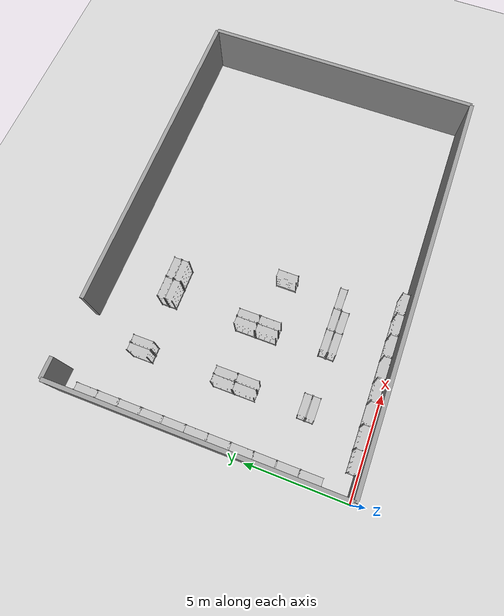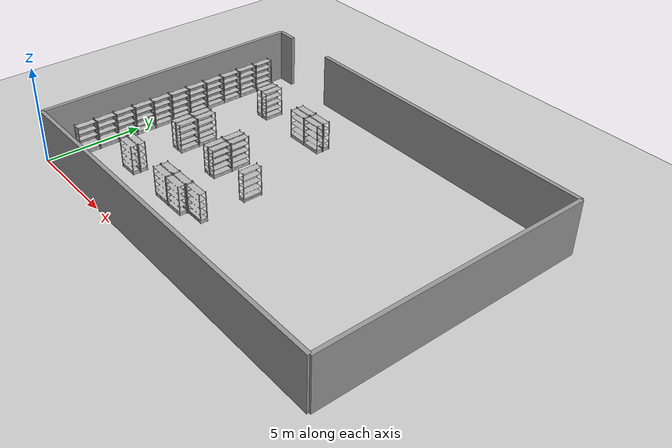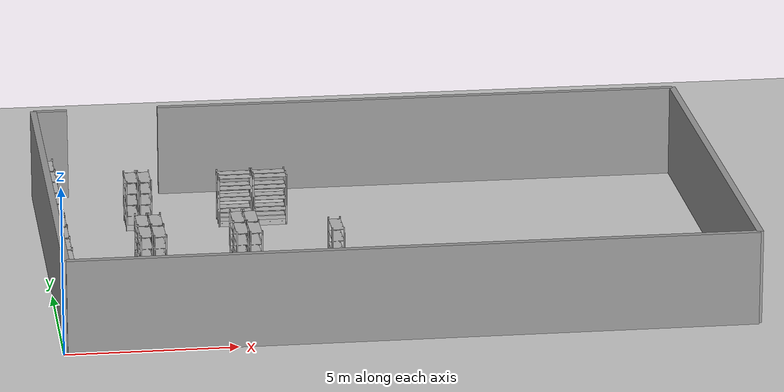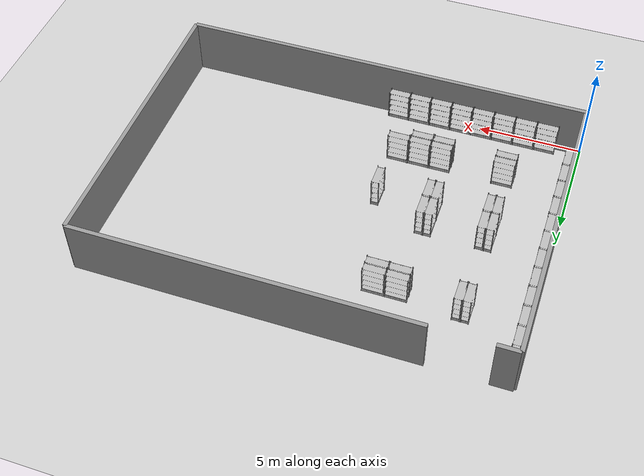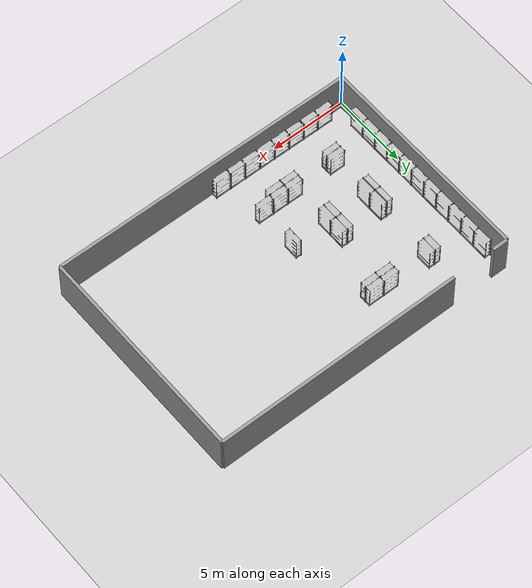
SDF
<sdf version="1.6">
 <world name="default">
  <model name="ground_plane">
   <static>1</static>
   <link name="link">
    <collision name="collision">
     <geometry><plane><normal>0 0 1</normal><size>100 100</size></plane></geometry>
     <surface>
      <contact><collide_bitmask>65535</collide_bitmask></contact>
      <friction><ode><mu>1000</mu><mu2>1000</mu2></ode></friction>
     </surface>
    </collision>
    <visual name="visual">
     <cast_shadows>0</cast_shadows>
     <geometry><plane><normal>0 0 1</normal><size>100 100</size></plane></geometry>
     <material>
      <script><uri>file://media/materials/scripts/gazebo.material</uri><name>Gazebo/Grey</name></script>
     </material>
    </visual>
   </link>
  </model>
  <model name="store_shelf_moduled_0">
   <link name="link">
    <collision name="collision">
     <geometry><mesh><uri>model://store_shelf_moduled/meshes/store_shelf_moduled.dae</uri></mesh></geometry>
    </collision>
    <visual name="visual">
     <geometry><mesh><uri>model://store_shelf_moduled/meshes/store_shelf_moduled.dae</uri></mesh></geometry>
    </visual>
    <inertial>
     <mass>1000</mass>
     <inertia>
      <ixx>840083</ixx>
      <ixy>0</ixy>
      <ixz>0</ixz>
      <iyy>475500</iyy>
      <iyz>0</iyz>
      <izz>1.30208e+06</izz>
     </inertia>
    </inertial>
   </link>
   <static>1</static>
   <pose>1.16 0.2 0 0 0 0</pose>
  </model>
  <model name="store_shelf_moduled_1">
   <link name="link">
    <collision name="collision">
     <geometry><mesh><uri>model://store_shelf_moduled/meshes/store_shelf_moduled.dae</uri></mesh></geometry>
    </collision>
    <visual name="visual">
     <geometry><mesh><uri>model://store_shelf_moduled/meshes/store_shelf_moduled.dae</uri></mesh></geometry>
    </visual>
    <inertial>
     <mass>1000</mass>
     <inertia>
      <ixx>840083</ixx>
      <ixy>0</ixy>
      <ixz>0</ixz>
      <iyy>475500</iyy>
      <iyz>0</iyz>
      <izz>1.30208e+06</izz>
     </inertia>
    </inertial>
   </link>
   <static>1</static>
   <pose>2.22 0.2 0 0 0 0</pose>
  </model>
  <model name="store_shelf_moduled_2">
   <link name="link">
    <collision name="collision">
     <geometry><mesh><uri>model://store_shelf_moduled/meshes/store_shelf_moduled.dae</uri></mesh></geometry>
    </collision>
    <visual name="visual">
     <geometry><mesh><uri>model://store_shelf_moduled/meshes/store_shelf_moduled.dae</uri></mesh></geometry>
    </visual>
    <inertial>
     <mass>1000</mass>
     <inertia>
      <ixx>840083</ixx>
      <ixy>0</ixy>
      <ixz>0</ixz>
      <iyy>475500</iyy>
      <iyz>0</iyz>
      <izz>1.30208e+06</izz>
     </inertia>
    </inertial>
   </link>
   <static>1</static>
   <pose>3.28 0.2 0 0 0 0</pose>
  </model>
  <model name="store_shelf_moduled_3">
   <link name="link">
    <collision name="collision">
     <geometry><mesh><uri>model://store_shelf_moduled/meshes/store_shelf_moduled.dae</uri></mesh></geometry>
    </collision>
    <visual name="visual">
     <geometry><mesh><uri>model://store_shelf_moduled/meshes/store_shelf_moduled.dae</uri></mesh></geometry>
    </visual>
    <inertial>
     <mass>1000</mass>
     <inertia>
      <ixx>840083</ixx>
      <ixy>0</ixy>
      <ixz>0</ixz>
      <iyy>475500</iyy>
      <iyz>0</iyz>
      <izz>1.30208e+06</izz>
     </inertia>
    </inertial>
   </link>
   <static>1</static>
   <pose>4.34 0.2 0 0 0 0</pose>
  </model>
  <model name="store_shelf_moduled_4">
   <link name="link">
    <collision name="collision">
     <geometry><mesh><uri>model://store_shelf_moduled/meshes/store_shelf_moduled.dae</uri></mesh></geometry>
    </collision>
    <visual name="visual">
     <geometry><mesh><uri>model://store_shelf_moduled/meshes/store_shelf_moduled.dae</uri></mesh></geometry>
    </visual>
    <inertial>
     <mass>1000</mass>
     <inertia>
      <ixx>840083</ixx>
      <ixy>0</ixy>
      <ixz>0</ixz>
      <iyy>475500</iyy>
      <iyz>0</iyz>
      <izz>1.30208e+06</izz>
     </inertia>
    </inertial>
   </link>
   <static>1</static>
   <pose>5.4 0.2 0 0 0 0</pose>
  </model>
  <model name="store_shelf_moduled_5">
   <link name="link">
    <collision name="collision">
     <geometry><mesh><uri>model://store_shelf_moduled/meshes/store_shelf_moduled.dae</uri></mesh></geometry>
    </collision>
    <visual name="visual">
     <geometry><mesh><uri>model://store_shelf_moduled/meshes/store_shelf_moduled.dae</uri></mesh></geometry>
    </visual>
    <inertial>
     <mass>1000</mass>
     <inertia>
      <ixx>840083</ixx>
      <ixy>0</ixy>
      <ixz>0</ixz>
      <iyy>475500</iyy>
      <iyz>0</iyz>
      <izz>1.30208e+06</izz>
     </inertia>
    </inertial>
   </link>
   <static>1</static>
   <pose>6.46 0.2 0 0 0 0</pose>
  </model>
  <model name="store_shelf_moduled_6">
   <link name="link">
    <collision name="collision">
     <geometry><mesh><uri>model://store_shelf_moduled/meshes/store_shelf_moduled.dae</uri></mesh></geometry>
    </collision>
    <visual name="visual">
     <geometry><mesh><uri>model://store_shelf_moduled/meshes/store_shelf_moduled.dae</uri></mesh></geometry>
    </visual>
    <inertial>
     <mass>1000</mass>
     <inertia>
      <ixx>840083</ixx>
      <ixy>0</ixy>
      <ixz>0</ixz>
      <iyy>475500</iyy>
      <iyz>0</iyz>
      <izz>1.30208e+06</izz>
     </inertia>
    </inertial>
   </link>
   <static>1</static>
   <pose>7.52 0.2 0 0 0 0</pose>
  </model>
  <model name="store_shelf_moduled_7">
   <link name="link">
    <collision name="collision">
     <geometry><mesh><uri>model://store_shelf_moduled/meshes/store_shelf_moduled.dae</uri></mesh></geometry>
    </collision>
    <visual name="visual">
     <geometry><mesh><uri>model://store_shelf_moduled/meshes/store_shelf_moduled.dae</uri></mesh></geometry>
    </visual>
    <inertial>
     <mass>1000</mass>
     <inertia>
      <ixx>840083</ixx>
      <ixy>0</ixy>
      <ixz>0</ixz>
      <iyy>475500</iyy>
      <iyz>0</iyz>
      <izz>1.30208e+06</izz>
     </inertia>
    </inertial>
   </link>
   <static>1</static>
   <pose>8.58 0.2 0 0 0 0</pose>
  </model>
  <model name="store_shelf_moduled_27">
   <link name="link">
    <collision name="collision">
     <geometry><mesh><uri>model://store_shelf_moduled/meshes/store_shelf_moduled.dae</uri></mesh></geometry>
    </collision>
    <visual name="visual">
     <geometry><mesh><uri>model://store_shelf_moduled/meshes/store_shelf_moduled.dae</uri></mesh></geometry>
    </visual>
    <inertial>
     <mass>1000</mass>
     <inertia>
      <ixx>840083</ixx>
      <ixy>0</ixy>
      <ixz>0</ixz>
      <iyy>475500</iyy>
      <iyz>0</iyz>
      <izz>1.30208e+06</izz>
     </inertia>
    </inertial>
   </link>
   <static>1</static>
   <pose>0.2 13.15 0 0 0 -1.570796</pose>
  </model>
  <model name="store_shelf_moduled_28">
   <link name="link">
    <collision name="collision">
     <geometry><mesh><uri>model://store_shelf_moduled/meshes/store_shelf_moduled.dae</uri></mesh></geometry>
    </collision>
    <visual name="visual">
     <geometry><mesh><uri>model://store_shelf_moduled/meshes/store_shelf_moduled.dae</uri></mesh></geometry>
    </visual>
    <inertial>
     <mass>1000</mass>
     <inertia>
      <ixx>840083</ixx>
      <ixy>0</ixy>
      <ixz>0</ixz>
      <iyy>475500</iyy>
      <iyz>0</iyz>
      <izz>1.30208e+06</izz>
     </inertia>
    </inertial>
   </link>
   <static>1</static>
   <pose>0.2 12.09 0 0 0 -1.570796</pose>
  </model>
  <model name="store_shelf_moduled_29">
   <link name="link">
    <collision name="collision">
     <geometry><mesh><uri>model://store_shelf_moduled/meshes/store_shelf_moduled.dae</uri></mesh></geometry>
    </collision>
    <visual name="visual">
     <geometry><mesh><uri>model://store_shelf_moduled/meshes/store_shelf_moduled.dae</uri></mesh></geometry>
    </visual>
    <inertial>
     <mass>1000</mass>
     <inertia>
      <ixx>840083</ixx>
      <ixy>0</ixy>
      <ixz>0</ixz>
      <iyy>475500</iyy>
      <iyz>0</iyz>
      <izz>1.30208e+06</izz>
     </inertia>
    </inertial>
   </link>
   <static>1</static>
   <pose>0.2 11.03 0 0 0 -1.570796</pose>
  </model>
  <model name="store_shelf_moduled_30">
   <link name="link">
    <collision name="collision">
     <geometry><mesh><uri>model://store_shelf_moduled/meshes/store_shelf_moduled.dae</uri></mesh></geometry>
    </collision>
    <visual name="visual">
     <geometry><mesh><uri>model://store_shelf_moduled/meshes/store_shelf_moduled.dae</uri></mesh></geometry>
    </visual>
    <inertial>
     <mass>1000</mass>
     <inertia>
      <ixx>840083</ixx>
      <ixy>0</ixy>
      <ixz>0</ixz>
      <iyy>475500</iyy>
      <iyz>0</iyz>
      <izz>1.30208e+06</izz>
     </inertia>
    </inertial>
   </link>
   <static>1</static>
   <pose>0.2 9.97 0 0 0 -1.570796</pose>
  </model>
  <model name="store_shelf_moduled_31">
   <link name="link">
    <collision name="collision">
     <geometry><mesh><uri>model://store_shelf_moduled/meshes/store_shelf_moduled.dae</uri></mesh></geometry>
    </collision>
    <visual name="visual">
     <geometry><mesh><uri>model://store_shelf_moduled/meshes/store_shelf_moduled.dae</uri></mesh></geometry>
    </visual>
    <inertial>
     <mass>1000</mass>
     <inertia>
      <ixx>840083</ixx>
      <ixy>0</ixy>
      <ixz>0</ixz>
      <iyy>475500</iyy>
      <iyz>0</iyz>
      <izz>1.30208e+06</izz>
     </inertia>
    </inertial>
   </link>
   <static>1</static>
   <pose>0.2 8.91 0 0 0 -1.570796</pose>
  </model>
  <model name="store_shelf_moduled_32">
   <link name="link">
    <collision name="collision">
     <geometry><mesh><uri>model://store_shelf_moduled/meshes/store_shelf_moduled.dae</uri></mesh></geometry>
    </collision>
    <visual name="visual">
     <geometry><mesh><uri>model://store_shelf_moduled/meshes/store_shelf_moduled.dae</uri></mesh></geometry>
    </visual>
    <inertial>
     <mass>1000</mass>
     <inertia>
      <ixx>840083</ixx>
      <ixy>0</ixy>
      <ixz>0</ixz>
      <iyy>475500</iyy>
      <iyz>0</iyz>
      <izz>1.30208e+06</izz>
     </inertia>
    </inertial>
   </link>
   <static>1</static>
   <pose>0.2 7.85 0 0 0 -1.570796</pose>
  </model>
  <model name="store_shelf_moduled_33">
   <link name="link">
    <collision name="collision">
     <geometry><mesh><uri>model://store_shelf_moduled/meshes/store_shelf_moduled.dae</uri></mesh></geometry>
    </collision>
    <visual name="visual">
     <geometry><mesh><uri>model://store_shelf_moduled/meshes/store_shelf_moduled.dae</uri></mesh></geometry>
    </visual>
    <inertial>
     <mass>1000</mass>
     <inertia>
      <ixx>840083</ixx>
      <ixy>0</ixy>
      <ixz>0</ixz>
      <iyy>475500</iyy>
      <iyz>0</iyz>
      <izz>1.30208e+06</izz>
     </inertia>
    </inertial>
   </link>
   <static>1</static>
   <pose>0.2 6.79 0 0 0 -1.570796</pose>
  </model>
  <model name="store_shelf_moduled_34">
   <link name="link">
    <collision name="collision">
     <geometry><mesh><uri>model://store_shelf_moduled/meshes/store_shelf_moduled.dae</uri></mesh></geometry>
    </collision>
    <visual name="visual">
     <geometry><mesh><uri>model://store_shelf_moduled/meshes/store_shelf_moduled.dae</uri></mesh></geometry>
    </visual>
    <inertial>
     <mass>1000</mass>
     <inertia>
      <ixx>840083</ixx>
      <ixy>0</ixy>
      <ixz>0</ixz>
      <iyy>475500</iyy>
      <iyz>0</iyz>
      <izz>1.30208e+06</izz>
     </inertia>
    </inertial>
   </link>
   <static>1</static>
   <pose>0.2 5.73 0 0 0 -1.570796</pose>
  </model>
  <model name="store_shelf_moduled_35">
   <link name="link">
    <collision name="collision">
     <geometry><mesh><uri>model://store_shelf_moduled/meshes/store_shelf_moduled.dae</uri></mesh></geometry>
    </collision>
    <visual name="visual">
     <geometry><mesh><uri>model://store_shelf_moduled/meshes/store_shelf_moduled.dae</uri></mesh></geometry>
    </visual>
    <inertial>
     <mass>1000</mass>
     <inertia>
      <ixx>840083</ixx>
      <ixy>0</ixy>
      <ixz>0</ixz>
      <iyy>475500</iyy>
      <iyz>0</iyz>
      <izz>1.30208e+06</izz>
     </inertia>
    </inertial>
   </link>
   <static>1</static>
   <pose>0.2 4.67 0 0 0 -1.570796</pose>
  </model>
  <model name="store_shelf_moduled_36">
   <link name="link">
    <collision name="collision">
     <geometry><mesh><uri>model://store_shelf_moduled/meshes/store_shelf_moduled.dae</uri></mesh></geometry>
    </collision>
    <visual name="visual">
     <geometry><mesh><uri>model://store_shelf_moduled/meshes/store_shelf_moduled.dae</uri></mesh></geometry>
    </visual>
    <inertial>
     <mass>1000</mass>
     <inertia>
      <ixx>840083</ixx>
      <ixy>0</ixy>
      <ixz>0</ixz>
      <iyy>475500</iyy>
      <iyz>0</iyz>
      <izz>1.30208e+06</izz>
     </inertia>
    </inertial>
   </link>
   <static>1</static>
   <pose>0.2 3.61 0 0 0 -1.570796</pose>
  </model>
  <model name="store_shelf_moduled_37">
   <link name="link">
    <collision name="collision">
     <geometry><mesh><uri>model://store_shelf_moduled/meshes/store_shelf_moduled.dae</uri></mesh></geometry>
    </collision>
    <visual name="visual">
     <geometry><mesh><uri>model://store_shelf_moduled/meshes/store_shelf_moduled.dae</uri></mesh></geometry>
    </visual>
    <inertial>
     <mass>1000</mass>
     <inertia>
      <ixx>840083</ixx>
      <ixy>0</ixy>
      <ixz>0</ixz>
      <iyy>475500</iyy>
      <iyz>0</iyz>
      <izz>1.30208e+06</izz>
     </inertia>
    </inertial>
   </link>
   <static>1</static>
   <pose>0.2 2.55 0 0 0 -1.570796</pose>
  </model>
  <model name="store_shelf_moduled_38">
   <link name="link">
    <collision name="collision">
     <geometry><mesh><uri>model://store_shelf_moduled/meshes/store_shelf_moduled.dae</uri></mesh></geometry>
    </collision>
    <visual name="visual">
     <geometry><mesh><uri>model://store_shelf_moduled/meshes/store_shelf_moduled.dae</uri></mesh></geometry>
    </visual>
    <inertial>
     <mass>1000</mass>
     <inertia>
      <ixx>840083</ixx>
      <ixy>0</ixy>
      <ixz>0</ixz>
      <iyy>475500</iyy>
      <iyz>0</iyz>
      <izz>1.30208e+06</izz>
     </inertia>
    </inertial>
   </link>
   <static>1</static>
   <pose>5.68 3.04 0 0 0 0</pose>
  </model>
  <model name="store_shelf_moduled_39">
   <link name="link">
    <collision name="collision">
     <geometry><mesh><uri>model://store_shelf_moduled/meshes/store_shelf_moduled.dae</uri></mesh></geometry>
    </collision>
    <visual name="visual">
     <geometry><mesh><uri>model://store_shelf_moduled/meshes/store_shelf_moduled.dae</uri></mesh></geometry>
    </visual>
    <inertial>
     <mass>1000</mass>
     <inertia>
      <ixx>840083</ixx>
      <ixy>0</ixy>
      <ixz>0</ixz>
      <iyy>475500</iyy>
      <iyz>0</iyz>
      <izz>1.30208e+06</izz>
     </inertia>
    </inertial>
   </link>
   <static>1</static>
   <pose>6.74 3.04 0 0 0 -3.141593</pose>
  </model>
  <model name="store_shelf_moduled_40">
   <link name="link">
    <collision name="collision">
     <geometry><mesh><uri>model://store_shelf_moduled/meshes/store_shelf_moduled.dae</uri></mesh></geometry>
    </collision>
    <visual name="visual">
     <geometry><mesh><uri>model://store_shelf_moduled/meshes/store_shelf_moduled.dae</uri></mesh></geometry>
    </visual>
    <inertial>
     <mass>1000</mass>
     <inertia>
      <ixx>840083</ixx>
      <ixy>0</ixy>
      <ixz>0</ixz>
      <iyy>475500</iyy>
      <iyz>0</iyz>
      <izz>1.30208e+06</izz>
     </inertia>
    </inertial>
   </link>
   <static>1</static>
   <pose>6.74 3.04 0 0 0 0</pose>
  </model>
  <model name="store_shelf_moduled_41">
   <link name="link">
    <collision name="collision">
     <geometry><mesh><uri>model://store_shelf_moduled/meshes/store_shelf_moduled.dae</uri></mesh></geometry>
    </collision>
    <visual name="visual">
     <geometry><mesh><uri>model://store_shelf_moduled/meshes/store_shelf_moduled.dae</uri></mesh></geometry>
    </visual>
    <inertial>
     <mass>1000</mass>
     <inertia>
      <ixx>840083</ixx>
      <ixy>0</ixy>
      <ixz>0</ixz>
      <iyy>475500</iyy>
      <iyz>0</iyz>
      <izz>1.30208e+06</izz>
     </inertia>
    </inertial>
   </link>
   <static>1</static>
   <pose>7.8 3.04 0 0 0 -3.141593</pose>
  </model>
  <model name="store_shelf_moduled_42">
   <link name="link">
    <collision name="collision">
     <geometry><mesh><uri>model://store_shelf_moduled/meshes/store_shelf_moduled.dae</uri></mesh></geometry>
    </collision>
    <visual name="visual">
     <geometry><mesh><uri>model://store_shelf_moduled/meshes/store_shelf_moduled.dae</uri></mesh></geometry>
    </visual>
    <inertial>
     <mass>1000</mass>
     <inertia>
      <ixx>840083</ixx>
      <ixy>0</ixy>
      <ixz>0</ixz>
      <iyy>475500</iyy>
      <iyz>0</iyz>
      <izz>1.30208e+06</izz>
     </inertia>
    </inertial>
   </link>
   <static>1</static>
   <pose>7.8 3.04 0 0 0 0</pose>
  </model>
  <model name="store_shelf_moduled_44">
   <link name="link">
    <collision name="collision">
     <geometry><mesh><uri>model://store_shelf_moduled/meshes/store_shelf_moduled.dae</uri></mesh></geometry>
    </collision>
    <visual name="visual">
     <geometry><mesh><uri>model://store_shelf_moduled/meshes/store_shelf_moduled.dae</uri></mesh></geometry>
    </visual>
    <inertial>
     <mass>1000</mass>
     <inertia>
      <ixx>840083</ixx>
      <ixy>0</ixy>
      <ixz>0</ixz>
      <iyy>475500</iyy>
      <iyz>0</iyz>
      <izz>1.30208e+06</izz>
     </inertia>
    </inertial>
   </link>
   <static>1</static>
   <pose>3.04 5.46 0 0 0 1.570796</pose>
  </model>
  <model name="store_shelf_moduled_45">
   <link name="link">
    <collision name="collision">
     <geometry><mesh><uri>model://store_shelf_moduled/meshes/store_shelf_moduled.dae</uri></mesh></geometry>
    </collision>
    <visual name="visual">
     <geometry><mesh><uri>model://store_shelf_moduled/meshes/store_shelf_moduled.dae</uri></mesh></geometry>
    </visual>
    <inertial>
     <mass>1000</mass>
     <inertia>
      <ixx>840083</ixx>
      <ixy>0</ixy>
      <ixz>0</ixz>
      <iyy>475500</iyy>
      <iyz>0</iyz>
      <izz>1.30208e+06</izz>
     </inertia>
    </inertial>
   </link>
   <static>1</static>
   <pose>3.04 6.52 0 0 0 -1.570796</pose>
  </model>
  <model name="store_shelf_moduled_46">
   <link name="link">
    <collision name="collision">
     <geometry><mesh><uri>model://store_shelf_moduled/meshes/store_shelf_moduled.dae</uri></mesh></geometry>
    </collision>
    <visual name="visual">
     <geometry><mesh><uri>model://store_shelf_moduled/meshes/store_shelf_moduled.dae</uri></mesh></geometry>
    </visual>
    <inertial>
     <mass>1000</mass>
     <inertia>
      <ixx>840083</ixx>
      <ixy>0</ixy>
      <ixz>0</ixz>
      <iyy>475500</iyy>
      <iyz>0</iyz>
      <izz>1.30208e+06</izz>
     </inertia>
    </inertial>
   </link>
   <static>1</static>
   <pose>3.04 6.52 0 0 0 1.570796</pose>
  </model>
  <model name="store_shelf_moduled_47">
   <link name="link">
    <collision name="collision">
     <geometry><mesh><uri>model://store_shelf_moduled/meshes/store_shelf_moduled.dae</uri></mesh></geometry>
    </collision>
    <visual name="visual">
     <geometry><mesh><uri>model://store_shelf_moduled/meshes/store_shelf_moduled.dae</uri></mesh></geometry>
    </visual>
    <inertial>
     <mass>1000</mass>
     <inertia>
      <ixx>840083</ixx>
      <ixy>0</ixy>
      <ixz>0</ixz>
      <iyy>475500</iyy>
      <iyz>0</iyz>
      <izz>1.30208e+06</izz>
     </inertia>
    </inertial>
   </link>
   <static>1</static>
   <pose>3.04 7.58 0 0 0 -1.570796</pose>
  </model>
  <model name="store_shelf_moduled_48">
   <link name="link">
    <collision name="collision">
     <geometry><mesh><uri>model://store_shelf_moduled/meshes/store_shelf_moduled.dae</uri></mesh></geometry>
    </collision>
    <visual name="visual">
     <geometry><mesh><uri>model://store_shelf_moduled/meshes/store_shelf_moduled.dae</uri></mesh></geometry>
    </visual>
    <inertial>
     <mass>1000</mass>
     <inertia>
      <ixx>840083</ixx>
      <ixy>0</ixy>
      <ixz>0</ixz>
      <iyy>475500</iyy>
      <iyz>0</iyz>
      <izz>1.30208e+06</izz>
     </inertia>
    </inertial>
   </link>
   <static>1</static>
   <pose>5.46 11.06 0 0 0 0</pose>
  </model>
  <model name="store_shelf_moduled_49">
   <link name="link">
    <collision name="collision">
     <geometry><mesh><uri>model://store_shelf_moduled/meshes/store_shelf_moduled.dae</uri></mesh></geometry>
    </collision>
    <visual name="visual">
     <geometry><mesh><uri>model://store_shelf_moduled/meshes/store_shelf_moduled.dae</uri></mesh></geometry>
    </visual>
    <inertial>
     <mass>1000</mass>
     <inertia>
      <ixx>840083</ixx>
      <ixy>0</ixy>
      <ixz>0</ixz>
      <iyy>475500</iyy>
      <iyz>0</iyz>
      <izz>1.30208e+06</izz>
     </inertia>
    </inertial>
   </link>
   <static>1</static>
   <pose>6.52 11.06 0 0 0 -3.141593</pose>
  </model>
  <model name="store_shelf_moduled_50">
   <link name="link">
    <collision name="collision">
     <geometry><mesh><uri>model://store_shelf_moduled/meshes/store_shelf_moduled.dae</uri></mesh></geometry>
    </collision>
    <visual name="visual">
     <geometry><mesh><uri>model://store_shelf_moduled/meshes/store_shelf_moduled.dae</uri></mesh></geometry>
    </visual>
    <inertial>
     <mass>1000</mass>
     <inertia>
      <ixx>840083</ixx>
      <ixy>0</ixy>
      <ixz>0</ixz>
      <iyy>475500</iyy>
      <iyz>0</iyz>
      <izz>1.30208e+06</izz>
     </inertia>
    </inertial>
   </link>
   <static>1</static>
   <pose>6.52 11.06 0 0 0 0</pose>
  </model>
  <model name="store_shelf_moduled_51">
   <link name="link">
    <collision name="collision">
     <geometry><mesh><uri>model://store_shelf_moduled/meshes/store_shelf_moduled.dae</uri></mesh></geometry>
    </collision>
    <visual name="visual">
     <geometry><mesh><uri>model://store_shelf_moduled/meshes/store_shelf_moduled.dae</uri></mesh></geometry>
    </visual>
    <inertial>
     <mass>1000</mass>
     <inertia>
      <ixx>840083</ixx>
      <ixy>0</ixy>
      <ixz>0</ixz>
      <iyy>475500</iyy>
      <iyz>0</iyz>
      <izz>1.30208e+06</izz>
     </inertia>
    </inertial>
   </link>
   <static>1</static>
   <pose>7.58 11.06 0 0 0 -3.141593</pose>
  </model>
  <model name="store_shelf_moduled_66">
   <link name="link">
    <collision name="collision">
     <geometry><mesh><uri>model://store_shelf_moduled/meshes/store_shelf_moduled.dae</uri></mesh></geometry>
    </collision>
    <visual name="visual">
     <geometry><mesh><uri>model://store_shelf_moduled/meshes/store_shelf_moduled.dae</uri></mesh></geometry>
    </visual>
    <inertial>
     <mass>1000</mass>
     <inertia>
      <ixx>840083</ixx>
      <ixy>0</ixy>
      <ixz>0</ixz>
      <iyy>475500</iyy>
      <iyz>0</iyz>
      <izz>1.30208e+06</izz>
     </inertia>
    </inertial>
   </link>
   <static>1</static>
   <pose>5.88 5.46 0 0 0 1.570796</pose>
  </model>
  <model name="store_shelf_moduled_67">
   <link name="link">
    <collision name="collision">
     <geometry><mesh><uri>model://store_shelf_moduled/meshes/store_shelf_moduled.dae</uri></mesh></geometry>
    </collision>
    <visual name="visual">
     <geometry><mesh><uri>model://store_shelf_moduled/meshes/store_shelf_moduled.dae</uri></mesh></geometry>
    </visual>
    <inertial>
     <mass>1000</mass>
     <inertia>
      <ixx>840083</ixx>
      <ixy>0</ixy>
      <ixz>0</ixz>
      <iyy>475500</iyy>
      <iyz>0</iyz>
      <izz>1.30208e+06</izz>
     </inertia>
    </inertial>
   </link>
   <static>1</static>
   <pose>5.88 6.52 0 0 0 -1.570796</pose>
  </model>
  <model name="store_shelf_moduled_68">
   <link name="link">
    <collision name="collision">
     <geometry><mesh><uri>model://store_shelf_moduled/meshes/store_shelf_moduled.dae</uri></mesh></geometry>
    </collision>
    <visual name="visual">
     <geometry><mesh><uri>model://store_shelf_moduled/meshes/store_shelf_moduled.dae</uri></mesh></geometry>
    </visual>
    <inertial>
     <mass>1000</mass>
     <inertia>
      <ixx>840083</ixx>
      <ixy>0</ixy>
      <ixz>0</ixz>
      <iyy>475500</iyy>
      <iyz>0</iyz>
      <izz>1.30208e+06</izz>
     </inertia>
    </inertial>
   </link>
   <static>1</static>
   <pose>5.88 6.52 0 0 0 1.570796</pose>
  </model>
  <model name="store_shelf_moduled_69">
   <link name="link">
    <collision name="collision">
     <geometry><mesh><uri>model://store_shelf_moduled/meshes/store_shelf_moduled.dae</uri></mesh></geometry>
    </collision>
    <visual name="visual">
     <geometry><mesh><uri>model://store_shelf_moduled/meshes/store_shelf_moduled.dae</uri></mesh></geometry>
    </visual>
    <inertial>
     <mass>1000</mass>
     <inertia>
      <ixx>840083</ixx>
      <ixy>0</ixy>
      <ixz>0</ixz>
      <iyy>475500</iyy>
      <iyz>0</iyz>
      <izz>1.30208e+06</izz>
     </inertia>
    </inertial>
   </link>
   <static>1</static>
   <pose>5.88 7.58 0 0 0 -1.570796</pose>
  </model>
  <model name="store_shelf_moduled_74">
   <link name="link">
    <collision name="collision">
     <geometry><mesh><uri>model://store_shelf_moduled/meshes/store_shelf_moduled.dae</uri></mesh></geometry>
    </collision>
    <visual name="visual">
     <geometry><mesh><uri>model://store_shelf_moduled/meshes/store_shelf_moduled.dae</uri></mesh></geometry>
    </visual>
    <inertial>
     <mass>1000</mass>
     <inertia>
      <ixx>840083</ixx>
      <ixy>0</ixy>
      <ixz>0</ixz>
      <iyy>475500</iyy>
      <iyz>0</iyz>
      <izz>1.30208e+06</izz>
     </inertia>
    </inertial>
   </link>
   <static>1</static>
   <pose>8.72 5.46 0 0 0 1.570796</pose>
  </model>
  <model name="store_shelf_moduled_80">
   <link name="link">
    <collision name="collision">
     <geometry><mesh><uri>model://store_shelf_moduled/meshes/store_shelf_moduled.dae</uri></mesh></geometry>
    </collision>
    <visual name="visual">
     <geometry><mesh><uri>model://store_shelf_moduled/meshes/store_shelf_moduled.dae</uri></mesh></geometry>
    </visual>
    <inertial>
     <mass>1000</mass>
     <inertia>
      <ixx>840083</ixx>
      <ixy>0</ixy>
      <ixz>0</ixz>
      <iyy>475500</iyy>
      <iyz>0</iyz>
      <izz>1.30208e+06</izz>
     </inertia>
    </inertial>
   </link>
   <static>1</static>
   <pose>3.04 10.64 0 0 0 1.570796</pose>
  </model>
  <model name="store_shelf_moduled_81">
   <link name="link">
    <collision name="collision">
     <geometry><mesh><uri>model://store_shelf_moduled/meshes/store_shelf_moduled.dae</uri></mesh></geometry>
    </collision>
    <visual name="visual">
     <geometry><mesh><uri>model://store_shelf_moduled/meshes/store_shelf_moduled.dae</uri></mesh></geometry>
    </visual>
    <inertial>
     <mass>1000</mass>
     <inertia>
      <ixx>840083</ixx>
      <ixy>0</ixy>
      <ixz>0</ixz>
      <iyy>475500</iyy>
      <iyz>0</iyz>
      <izz>1.30208e+06</izz>
     </inertia>
    </inertial>
   </link>
   <static>1</static>
   <pose>3.04 11.7 0 0 0 -1.570796</pose>
  </model>
  <model name="store_shelf_moduled_84">
   <link name="link">
    <collision name="collision">
     <geometry><mesh><uri>model://store_shelf_moduled/meshes/store_shelf_moduled.dae</uri></mesh></geometry>
    </collision>
    <visual name="visual">
     <geometry><mesh><uri>model://store_shelf_moduled/meshes/store_shelf_moduled.dae</uri></mesh></geometry>
    </visual>
    <inertial>
     <mass>1000</mass>
     <inertia>
      <ixx>840083</ixx>
      <ixy>0</ixy>
      <ixz>0</ixz>
      <iyy>475500</iyy>
      <iyz>0</iyz>
      <izz>1.30208e+06</izz>
     </inertia>
    </inertial>
   </link>
   <static>1</static>
   <pose>2.62 3.04 0 0 0 0</pose>
  </model>
  <model name="store_shelf_moduled_85">
   <link name="link">
    <collision name="collision">
     <geometry><mesh><uri>model://store_shelf_moduled/meshes/store_shelf_moduled.dae</uri></mesh></geometry>
    </collision>
    <visual name="visual">
     <geometry><mesh><uri>model://store_shelf_moduled/meshes/store_shelf_moduled.dae</uri></mesh></geometry>
    </visual>
    <inertial>
     <mass>1000</mass>
     <inertia>
      <ixx>840083</ixx>
      <ixy>0</ixy>
      <ixz>0</ixz>
      <iyy>475500</iyy>
      <iyz>0</iyz>
      <izz>1.30208e+06</izz>
     </inertia>
    </inertial>
   </link>
   <static>1</static>
   <pose>3.68 3.04 0 0 0 -3.141593</pose>
  </model>
  <model name="grey_wall0">
   <static>1</static>
   <link name="link">
    <pose>10.1 0.1 1.4 0 0 0</pose>
    <visual name="visual">
     <cast_shadows>0</cast_shadows>
     <geometry><box><size>20 0.2 2.8</size></box></geometry>
     <material>
      <name>vrc/grey_wall</name>
      <script>
       <uri>model://grey_wall/materials/scripts</uri>
       <uri>model://grey_wall/materials/textures</uri>
       <name>vrc/grey_wall</name>
      </script>
     </material>
    </visual>
    <collision name="collision">
     <geometry><box><size>20 0.2 2.8</size></box></geometry>
     <max_contacts>5</max_contacts>
    </collision>
   </link>
  </model>
  <model name="grey_wall1">
   <static>1</static>
   <link name="link">
    <pose>20.1 7.155 1.4 0 0 1.570796</pose>
    <visual name="visual">
     <cast_shadows>0</cast_shadows>
     <geometry><box><size>14.11 0.2 2.8</size></box></geometry>
     <material>
      <name>vrc/grey_wall</name>
      <script>
       <uri>model://grey_wall/materials/scripts</uri>
       <uri>model://grey_wall/materials/textures</uri>
       <name>vrc/grey_wall</name>
      </script>
     </material>
    </visual>
    <collision name="collision">
     <geometry><box><size>14.11 0.2 2.8</size></box></geometry>
     <max_contacts>5</max_contacts>
    </collision>
   </link>
  </model>
  <model name="grey_wall2">
   <static>1</static>
   <link name="link">
    <pose>12.015 14.21 1.4 0 0 3.141593</pose>
    <visual name="visual">
     <cast_shadows>0</cast_shadows>
     <geometry><box><size>16.17 0.2 2.8</size></box></geometry>
     <material>
      <name>vrc/grey_wall</name>
      <script>
       <uri>model://grey_wall/materials/scripts</uri>
       <uri>model://grey_wall/materials/textures</uri>
       <name>vrc/grey_wall</name>
      </script>
     </material>
    </visual>
    <collision name="collision">
     <geometry><box><size>16.17 0.2 2.8</size></box></geometry>
     <max_contacts>5</max_contacts>
    </collision>
   </link>
  </model>
  <model name="grey_wall3">
   <static>1</static>
   <link name="link">
    <pose>0.615 14.21 1.4 0 0 3.141593</pose>
    <visual name="visual">
     <cast_shadows>0</cast_shadows>
     <geometry><box><size>1.03 0.2 2.8</size></box></geometry>
     <material>
      <name>vrc/grey_wall</name>
      <script>
       <uri>model://grey_wall/materials/scripts</uri>
       <uri>model://grey_wall/materials/textures</uri>
       <name>vrc/grey_wall</name>
      </script>
     </material>
    </visual>
    <collision name="collision">
     <geometry><box><size>1.03 0.2 2.8</size></box></geometry>
     <max_contacts>5</max_contacts>
    </collision>
   </link>
  </model>
  <model name="grey_wall4">
   <static>1</static>
   <link name="link">
    <pose>0.1 7.155 1.4 0 0 -1.570796</pose>
    <visual name="visual">
     <cast_shadows>0</cast_shadows>
     <geometry><box><size>14.11 0.2 2.8</size></box></geometry>
     <material>
      <name>vrc/grey_wall</name>
      <script>
       <uri>model://grey_wall/materials/scripts</uri>
       <uri>model://grey_wall/materials/textures</uri>
       <name>vrc/grey_wall</name>
      </script>
     </material>
    </visual>
    <collision name="collision">
     <geometry><box><size>14.11 0.2 2.8</size></box></geometry>
     <max_contacts>5</max_contacts>
    </collision>
   </link>
  </model>
 </world>
</sdf>
